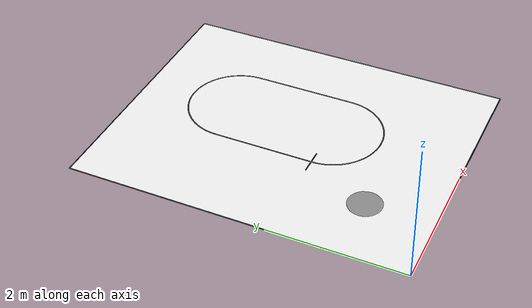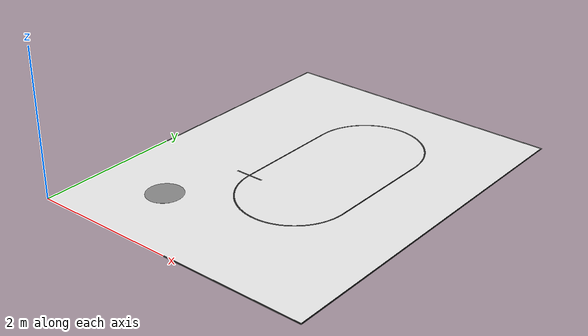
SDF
<?xml version="1.0"?>
<sdf version="1.10">
  <world name="d_task_field">
    <gravity>0 0 -9.8</gravity>
    <physics name="step" type="ignored">
      <max_step_size>0.001</max_step_size>
      <real_time_factor>1.0</real_time_factor>
    </physics>
    <scene><ambient>0.8 0.8 0.8 1</ambient><background>0.7 0.8 0.9 1</background></scene>
    <light name="sun" type="directional">
      <pose>2 2 10 0 0 0</pose><direction>-0.2 0.2 -1</direction>
      <diffuse>0.9 0.9 0.9 1</diffuse>
    </light>
    <model name="d_task_field_surface">
      <static>true</static><link name="field_link">
        <collision name="field_collision">
          <pose>2.000 2.500 -0.010 0 0 0</pose>
          <geometry><box><size>4.000 5.000 0.020</size></box></geometry>
        </collision>
      <visual name="field_white">
        <pose>2.000000000 2.500000000 -0.005000 0 0 0.000000000000</pose>
        <geometry><box><size>4.000000000 5.000000000 0.010000</size></box></geometry>
        <material><ambient>0.95 0.95 0.95 1</ambient><diffuse>0.95 0.95 0.95 1</diffuse></material>
        <cast_shadows>false</cast_shadows>
      </visual>
      <visual name="border_bottom">
        <pose>2.000000000 0.000000000 0.001000 0 0 0.000000000000</pose>
        <geometry><box><size>4.000200000 0.020000000 0.001000</size></box></geometry>
        <material><ambient>0.01 0.01 0.01 1</ambient><diffuse>0.01 0.01 0.01 1</diffuse></material>
        <cast_shadows>false</cast_shadows>
      </visual>
      <visual name="border_top">
        <pose>2.000000000 5.000000000 0.001000 0 0 0.000000000000</pose>
        <geometry><box><size>4.000200000 0.020000000 0.001000</size></box></geometry>
        <material><ambient>0.01 0.01 0.01 1</ambient><diffuse>0.01 0.01 0.01 1</diffuse></material>
        <cast_shadows>false</cast_shadows>
      </visual>
      <visual name="border_left">
        <pose>0.000000000 2.500000000 0.001000 0 0 1.570796326795</pose>
        <geometry><box><size>5.000200000 0.020000000 0.001000</size></box></geometry>
        <material><ambient>0.01 0.01 0.01 1</ambient><diffuse>0.01 0.01 0.01 1</diffuse></material>
        <cast_shadows>false</cast_shadows>
      </visual>
      <visual name="border_right">
        <pose>4.000000000 2.500000000 0.001000 0 0 1.570796326795</pose>
        <geometry><box><size>5.000200000 0.020000000 0.001000</size></box></geometry>
        <material><ambient>0.01 0.01 0.01 1</ambient><diffuse>0.01 0.01 0.01 1</diffuse></material>
        <cast_shadows>false</cast_shadows>
      </visual>
      <visual name="track_left">
        <pose>1.500000000 2.750000000 0.001000 0 0 1.570796326795</pose>
        <geometry><box><size>1.500200000 0.020000000 0.001000</size></box></geometry>
        <material><ambient>0.01 0.01 0.01 1</ambient><diffuse>0.01 0.01 0.01 1</diffuse></material>
        <cast_shadows>false</cast_shadows>
      </visual>
      <visual name="track_right">
        <pose>3.000000000 2.750000000 0.001000 0 0 1.570796326795</pose>
        <geometry><box><size>1.500200000 0.020000000 0.001000</size></box></geometry>
        <material><ambient>0.01 0.01 0.01 1</ambient><diffuse>0.01 0.01 0.01 1</diffuse></material>
        <cast_shadows>false</cast_shadows>
      </visual>
      <visual name="start_line_a">
        <pose>1.500000000 2.000000000 0.001000 0 0 0.000000000000</pose>
        <geometry><box><size>0.400200000 0.020000000 0.001000</size></box></geometry>
        <material><ambient>0.01 0.01 0.01 1</ambient><diffuse>0.01 0.01 0.01 1</diffuse></material>
        <cast_shadows>false</cast_shadows>
      </visual>
      <visual name="track_upper_000">
        <pose>1.500356917 3.516357270 0.001000 0 0 1.548979711145</pose>
        <geometry><box><size>0.032922328 0.020000000 0.001000</size></box></geometry>
        <material><ambient>0.01 0.01 0.01 1</ambient><diffuse>0.01 0.01 0.01 1</diffuse></material>
        <cast_shadows>false</cast_shadows>
      </visual>
      <visual name="track_upper_001">
        <pose>1.501783905 3.549040674 0.001000 0 0 1.505346479845</pose>
        <geometry><box><size>0.032922328 0.020000000 0.001000</size></box></geometry>
        <material><ambient>0.01 0.01 0.01 1</ambient><diffuse>0.01 0.01 0.01 1</diffuse></material>
        <cast_shadows>false</cast_shadows>
      </visual>
      <visual name="track_upper_002">
        <pose>1.504635165 3.581630726 0.001000 0 0 1.461713248545</pose>
        <geometry><box><size>0.032922328 0.020000000 0.001000</size></box></geometry>
        <material><ambient>0.01 0.01 0.01 1</ambient><diffuse>0.01 0.01 0.01 1</diffuse></material>
        <cast_shadows>false</cast_shadows>
      </visual>
      <visual name="track_upper_003">
        <pose>1.508905270 3.614065389 0.001000 0 0 1.418080017245</pose>
        <geometry><box><size>0.032922328 0.020000000 0.001000</size></box></geometry>
        <material><ambient>0.01 0.01 0.01 1</ambient><diffuse>0.01 0.01 0.01 1</diffuse></material>
        <cast_shadows>false</cast_shadows>
      </visual>
      <visual name="track_upper_004">
        <pose>1.514586090 3.646282922 0.001000 0 0 1.374446785946</pose>
        <geometry><box><size>0.032922328 0.020000000 0.001000</size></box></geometry>
        <material><ambient>0.01 0.01 0.01 1</ambient><diffuse>0.01 0.01 0.01 1</diffuse></material>
        <cast_shadows>false</cast_shadows>
      </visual>
      <visual name="track_upper_005">
        <pose>1.521666812 3.678221997 0.001000 0 0 1.330813554646</pose>
        <geometry><box><size>0.032922328 0.020000000 0.001000</size></box></geometry>
        <material><ambient>0.01 0.01 0.01 1</ambient><diffuse>0.01 0.01 0.01 1</diffuse></material>
        <cast_shadows>false</cast_shadows>
      </visual>
      <visual name="track_upper_006">
        <pose>1.530133959 3.709821817 0.001000 0 0 1.287180323346</pose>
        <geometry><box><size>0.032922328 0.020000000 0.001000</size></box></geometry>
        <material><ambient>0.01 0.01 0.01 1</ambient><diffuse>0.01 0.01 0.01 1</diffuse></material>
        <cast_shadows>false</cast_shadows>
      </visual>
      <visual name="track_upper_007">
        <pose>1.539971411 3.741022229 0.001000 0 0 1.243547092046</pose>
        <geometry><box><size>0.032922328 0.020000000 0.001000</size></box></geometry>
        <material><ambient>0.01 0.01 0.01 1</ambient><diffuse>0.01 0.01 0.01 1</diffuse></material>
        <cast_shadows>false</cast_shadows>
      </visual>
      <visual name="track_upper_008">
        <pose>1.551160443 3.771763841 0.001000 0 0 1.199913860746</pose>
        <geometry><box><size>0.032922328 0.020000000 0.001000</size></box></geometry>
        <material><ambient>0.01 0.01 0.01 1</ambient><diffuse>0.01 0.01 0.01 1</diffuse></material>
        <cast_shadows>false</cast_shadows>
      </visual>
      <visual name="track_upper_009">
        <pose>1.563679755 3.801988135 0.001000 0 0 1.156280629446</pose>
        <geometry><box><size>0.032922328 0.020000000 0.001000</size></box></geometry>
        <material><ambient>0.01 0.01 0.01 1</ambient><diffuse>0.01 0.01 0.01 1</diffuse></material>
        <cast_shadows>false</cast_shadows>
      </visual>
      <visual name="track_upper_010">
        <pose>1.577505517 3.831637578 0.001000 0 0 1.112647398146</pose>
        <geometry><box><size>0.032922328 0.020000000 0.001000</size></box></geometry>
        <material><ambient>0.01 0.01 0.01 1</ambient><diffuse>0.01 0.01 0.01 1</diffuse></material>
        <cast_shadows>false</cast_shadows>
      </visual>
      <visual name="track_upper_011">
        <pose>1.592611411 3.860655730 0.001000 0 0 1.069014166847</pose>
        <geometry><box><size>0.032922328 0.020000000 0.001000</size></box></geometry>
        <material><ambient>0.01 0.01 0.01 1</ambient><diffuse>0.01 0.01 0.01 1</diffuse></material>
        <cast_shadows>false</cast_shadows>
      </visual>
      <visual name="track_upper_012">
        <pose>1.608968681 3.888987353 0.001000 0 0 1.025380935547</pose>
        <geometry><box><size>0.032922328 0.020000000 0.001000</size></box></geometry>
        <material><ambient>0.01 0.01 0.01 1</ambient><diffuse>0.01 0.01 0.01 1</diffuse></material>
        <cast_shadows>false</cast_shadows>
      </visual>
      <visual name="track_upper_013">
        <pose>1.626546191 3.916578517 0.001000 0 0 0.981747704247</pose>
        <geometry><box><size>0.032922328 0.020000000 0.001000</size></box></geometry>
        <material><ambient>0.01 0.01 0.01 1</ambient><diffuse>0.01 0.01 0.01 1</diffuse></material>
        <cast_shadows>false</cast_shadows>
      </visual>
      <visual name="track_upper_014">
        <pose>1.645310481 3.943376700 0.001000 0 0 0.938114472947</pose>
        <geometry><box><size>0.032922328 0.020000000 0.001000</size></box></geometry>
        <material><ambient>0.01 0.01 0.01 1</ambient><diffuse>0.01 0.01 0.01 1</diffuse></material>
        <cast_shadows>false</cast_shadows>
      </visual>
      <visual name="track_upper_015">
        <pose>1.665225831 3.969330890 0.001000 0 0 0.894481241647</pose>
        <geometry><box><size>0.032922328 0.020000000 0.001000</size></box></geometry>
        <material><ambient>0.01 0.01 0.01 1</ambient><diffuse>0.01 0.01 0.01 1</diffuse></material>
        <cast_shadows>false</cast_shadows>
      </visual>
      <visual name="track_upper_016">
        <pose>1.686254333 3.994391681 0.001000 0 0 0.850848010347</pose>
        <geometry><box><size>0.032922328 0.020000000 0.001000</size></box></geometry>
        <material><ambient>0.01 0.01 0.01 1</ambient><diffuse>0.01 0.01 0.01 1</diffuse></material>
        <cast_shadows>false</cast_shadows>
      </visual>
      <visual name="track_upper_017">
        <pose>1.708355956 4.018511371 0.001000 0 0 0.807214779047</pose>
        <geometry><box><size>0.032922328 0.020000000 0.001000</size></box></geometry>
        <material><ambient>0.01 0.01 0.01 1</ambient><diffuse>0.01 0.01 0.01 1</diffuse></material>
        <cast_shadows>false</cast_shadows>
      </visual>
      <visual name="track_upper_018">
        <pose>1.731488629 4.041644044 0.001000 0 0 0.763581547748</pose>
        <geometry><box><size>0.032922328 0.020000000 0.001000</size></box></geometry>
        <material><ambient>0.01 0.01 0.01 1</ambient><diffuse>0.01 0.01 0.01 1</diffuse></material>
        <cast_shadows>false</cast_shadows>
      </visual>
      <visual name="track_upper_019">
        <pose>1.755608319 4.063745667 0.001000 0 0 0.719948316448</pose>
        <geometry><box><size>0.032922328 0.020000000 0.001000</size></box></geometry>
        <material><ambient>0.01 0.01 0.01 1</ambient><diffuse>0.01 0.01 0.01 1</diffuse></material>
        <cast_shadows>false</cast_shadows>
      </visual>
      <visual name="track_upper_020">
        <pose>1.780669110 4.084774169 0.001000 0 0 0.676315085148</pose>
        <geometry><box><size>0.032922328 0.020000000 0.001000</size></box></geometry>
        <material><ambient>0.01 0.01 0.01 1</ambient><diffuse>0.01 0.01 0.01 1</diffuse></material>
        <cast_shadows>false</cast_shadows>
      </visual>
      <visual name="track_upper_021">
        <pose>1.806623300 4.104689519 0.001000 0 0 0.632681853848</pose>
        <geometry><box><size>0.032922328 0.020000000 0.001000</size></box></geometry>
        <material><ambient>0.01 0.01 0.01 1</ambient><diffuse>0.01 0.01 0.01 1</diffuse></material>
        <cast_shadows>false</cast_shadows>
      </visual>
      <visual name="track_upper_022">
        <pose>1.833421483 4.123453809 0.001000 0 0 0.589048622548</pose>
        <geometry><box><size>0.032922328 0.020000000 0.001000</size></box></geometry>
        <material><ambient>0.01 0.01 0.01 1</ambient><diffuse>0.01 0.01 0.01 1</diffuse></material>
        <cast_shadows>false</cast_shadows>
      </visual>
      <visual name="track_upper_023">
        <pose>1.861012647 4.141031319 0.001000 0 0 0.545415391248</pose>
        <geometry><box><size>0.032922328 0.020000000 0.001000</size></box></geometry>
        <material><ambient>0.01 0.01 0.01 1</ambient><diffuse>0.01 0.01 0.01 1</diffuse></material>
        <cast_shadows>false</cast_shadows>
      </visual>
      <visual name="track_upper_024">
        <pose>1.889344270 4.157388589 0.001000 0 0 0.501782159948</pose>
        <geometry><box><size>0.032922328 0.020000000 0.001000</size></box></geometry>
        <material><ambient>0.01 0.01 0.01 1</ambient><diffuse>0.01 0.01 0.01 1</diffuse></material>
        <cast_shadows>false</cast_shadows>
      </visual>
      <visual name="track_upper_025">
        <pose>1.918362422 4.172494483 0.001000 0 0 0.458148928649</pose>
        <geometry><box><size>0.032922328 0.020000000 0.001000</size></box></geometry>
        <material><ambient>0.01 0.01 0.01 1</ambient><diffuse>0.01 0.01 0.01 1</diffuse></material>
        <cast_shadows>false</cast_shadows>
      </visual>
      <visual name="track_upper_026">
        <pose>1.948011865 4.186320245 0.001000 0 0 0.414515697349</pose>
        <geometry><box><size>0.032922328 0.020000000 0.001000</size></box></geometry>
        <material><ambient>0.01 0.01 0.01 1</ambient><diffuse>0.01 0.01 0.01 1</diffuse></material>
        <cast_shadows>false</cast_shadows>
      </visual>
      <visual name="track_upper_027">
        <pose>1.978236159 4.198839557 0.001000 0 0 0.370882466049</pose>
        <geometry><box><size>0.032922328 0.020000000 0.001000</size></box></geometry>
        <material><ambient>0.01 0.01 0.01 1</ambient><diffuse>0.01 0.01 0.01 1</diffuse></material>
        <cast_shadows>false</cast_shadows>
      </visual>
      <visual name="track_upper_028">
        <pose>2.008977771 4.210028589 0.001000 0 0 0.327249234749</pose>
        <geometry><box><size>0.032922328 0.020000000 0.001000</size></box></geometry>
        <material><ambient>0.01 0.01 0.01 1</ambient><diffuse>0.01 0.01 0.01 1</diffuse></material>
        <cast_shadows>false</cast_shadows>
      </visual>
      <visual name="track_upper_029">
        <pose>2.040178183 4.219866041 0.001000 0 0 0.283616003449</pose>
        <geometry><box><size>0.032922328 0.020000000 0.001000</size></box></geometry>
        <material><ambient>0.01 0.01 0.01 1</ambient><diffuse>0.01 0.01 0.01 1</diffuse></material>
        <cast_shadows>false</cast_shadows>
      </visual>
      <visual name="track_upper_030">
        <pose>2.071778003 4.228333188 0.001000 0 0 0.239982772149</pose>
        <geometry><box><size>0.032922328 0.020000000 0.001000</size></box></geometry>
        <material><ambient>0.01 0.01 0.01 1</ambient><diffuse>0.01 0.01 0.01 1</diffuse></material>
        <cast_shadows>false</cast_shadows>
      </visual>
      <visual name="track_upper_031">
        <pose>2.103717078 4.235413910 0.001000 0 0 0.196349540849</pose>
        <geometry><box><size>0.032922328 0.020000000 0.001000</size></box></geometry>
        <material><ambient>0.01 0.01 0.01 1</ambient><diffuse>0.01 0.01 0.01 1</diffuse></material>
        <cast_shadows>false</cast_shadows>
      </visual>
      <visual name="track_upper_032">
        <pose>2.135934611 4.241094730 0.001000 0 0 0.152716309550</pose>
        <geometry><box><size>0.032922328 0.020000000 0.001000</size></box></geometry>
        <material><ambient>0.01 0.01 0.01 1</ambient><diffuse>0.01 0.01 0.01 1</diffuse></material>
        <cast_shadows>false</cast_shadows>
      </visual>
      <visual name="track_upper_033">
        <pose>2.168369274 4.245364835 0.001000 0 0 0.109083078250</pose>
        <geometry><box><size>0.032922328 0.020000000 0.001000</size></box></geometry>
        <material><ambient>0.01 0.01 0.01 1</ambient><diffuse>0.01 0.01 0.01 1</diffuse></material>
        <cast_shadows>false</cast_shadows>
      </visual>
      <visual name="track_upper_034">
        <pose>2.200959326 4.248216095 0.001000 0 0 0.065449846950</pose>
        <geometry><box><size>0.032922328 0.020000000 0.001000</size></box></geometry>
        <material><ambient>0.01 0.01 0.01 1</ambient><diffuse>0.01 0.01 0.01 1</diffuse></material>
        <cast_shadows>false</cast_shadows>
      </visual>
      <visual name="track_upper_035">
        <pose>2.233642730 4.249643083 0.001000 0 0 0.021816615650</pose>
        <geometry><box><size>0.032922328 0.020000000 0.001000</size></box></geometry>
        <material><ambient>0.01 0.01 0.01 1</ambient><diffuse>0.01 0.01 0.01 1</diffuse></material>
        <cast_shadows>false</cast_shadows>
      </visual>
      <visual name="track_upper_036">
        <pose>2.266357270 4.249643083 0.001000 0 0 -0.021816615650</pose>
        <geometry><box><size>0.032922328 0.020000000 0.001000</size></box></geometry>
        <material><ambient>0.01 0.01 0.01 1</ambient><diffuse>0.01 0.01 0.01 1</diffuse></material>
        <cast_shadows>false</cast_shadows>
      </visual>
      <visual name="track_upper_037">
        <pose>2.299040674 4.248216095 0.001000 0 0 -0.065449846950</pose>
        <geometry><box><size>0.032922328 0.020000000 0.001000</size></box></geometry>
        <material><ambient>0.01 0.01 0.01 1</ambient><diffuse>0.01 0.01 0.01 1</diffuse></material>
        <cast_shadows>false</cast_shadows>
      </visual>
      <visual name="track_upper_038">
        <pose>2.331630726 4.245364835 0.001000 0 0 -0.109083078250</pose>
        <geometry><box><size>0.032922328 0.020000000 0.001000</size></box></geometry>
        <material><ambient>0.01 0.01 0.01 1</ambient><diffuse>0.01 0.01 0.01 1</diffuse></material>
        <cast_shadows>false</cast_shadows>
      </visual>
      <visual name="track_upper_039">
        <pose>2.364065389 4.241094730 0.001000 0 0 -0.152716309549</pose>
        <geometry><box><size>0.032922328 0.020000000 0.001000</size></box></geometry>
        <material><ambient>0.01 0.01 0.01 1</ambient><diffuse>0.01 0.01 0.01 1</diffuse></material>
        <cast_shadows>false</cast_shadows>
      </visual>
      <visual name="track_upper_040">
        <pose>2.396282922 4.235413910 0.001000 0 0 -0.196349540849</pose>
        <geometry><box><size>0.032922328 0.020000000 0.001000</size></box></geometry>
        <material><ambient>0.01 0.01 0.01 1</ambient><diffuse>0.01 0.01 0.01 1</diffuse></material>
        <cast_shadows>false</cast_shadows>
      </visual>
      <visual name="track_upper_041">
        <pose>2.428221997 4.228333188 0.001000 0 0 -0.239982772149</pose>
        <geometry><box><size>0.032922328 0.020000000 0.001000</size></box></geometry>
        <material><ambient>0.01 0.01 0.01 1</ambient><diffuse>0.01 0.01 0.01 1</diffuse></material>
        <cast_shadows>false</cast_shadows>
      </visual>
      <visual name="track_upper_042">
        <pose>2.459821817 4.219866041 0.001000 0 0 -0.283616003449</pose>
        <geometry><box><size>0.032922328 0.020000000 0.001000</size></box></geometry>
        <material><ambient>0.01 0.01 0.01 1</ambient><diffuse>0.01 0.01 0.01 1</diffuse></material>
        <cast_shadows>false</cast_shadows>
      </visual>
      <visual name="track_upper_043">
        <pose>2.491022229 4.210028589 0.001000 0 0 -0.327249234749</pose>
        <geometry><box><size>0.032922328 0.020000000 0.001000</size></box></geometry>
        <material><ambient>0.01 0.01 0.01 1</ambient><diffuse>0.01 0.01 0.01 1</diffuse></material>
        <cast_shadows>false</cast_shadows>
      </visual>
      <visual name="track_upper_044">
        <pose>2.521763841 4.198839557 0.001000 0 0 -0.370882466049</pose>
        <geometry><box><size>0.032922328 0.020000000 0.001000</size></box></geometry>
        <material><ambient>0.01 0.01 0.01 1</ambient><diffuse>0.01 0.01 0.01 1</diffuse></material>
        <cast_shadows>false</cast_shadows>
      </visual>
      <visual name="track_upper_045">
        <pose>2.551988135 4.186320245 0.001000 0 0 -0.414515697349</pose>
        <geometry><box><size>0.032922328 0.020000000 0.001000</size></box></geometry>
        <material><ambient>0.01 0.01 0.01 1</ambient><diffuse>0.01 0.01 0.01 1</diffuse></material>
        <cast_shadows>false</cast_shadows>
      </visual>
      <visual name="track_upper_046">
        <pose>2.581637578 4.172494483 0.001000 0 0 -0.458148928649</pose>
        <geometry><box><size>0.032922328 0.020000000 0.001000</size></box></geometry>
        <material><ambient>0.01 0.01 0.01 1</ambient><diffuse>0.01 0.01 0.01 1</diffuse></material>
        <cast_shadows>false</cast_shadows>
      </visual>
      <visual name="track_upper_047">
        <pose>2.610655730 4.157388589 0.001000 0 0 -0.501782159948</pose>
        <geometry><box><size>0.032922328 0.020000000 0.001000</size></box></geometry>
        <material><ambient>0.01 0.01 0.01 1</ambient><diffuse>0.01 0.01 0.01 1</diffuse></material>
        <cast_shadows>false</cast_shadows>
      </visual>
      <visual name="track_upper_048">
        <pose>2.638987353 4.141031319 0.001000 0 0 -0.545415391248</pose>
        <geometry><box><size>0.032922328 0.020000000 0.001000</size></box></geometry>
        <material><ambient>0.01 0.01 0.01 1</ambient><diffuse>0.01 0.01 0.01 1</diffuse></material>
        <cast_shadows>false</cast_shadows>
      </visual>
      <visual name="track_upper_049">
        <pose>2.666578517 4.123453809 0.001000 0 0 -0.589048622548</pose>
        <geometry><box><size>0.032922328 0.020000000 0.001000</size></box></geometry>
        <material><ambient>0.01 0.01 0.01 1</ambient><diffuse>0.01 0.01 0.01 1</diffuse></material>
        <cast_shadows>false</cast_shadows>
      </visual>
      <visual name="track_upper_050">
        <pose>2.693376700 4.104689519 0.001000 0 0 -0.632681853848</pose>
        <geometry><box><size>0.032922328 0.020000000 0.001000</size></box></geometry>
        <material><ambient>0.01 0.01 0.01 1</ambient><diffuse>0.01 0.01 0.01 1</diffuse></material>
        <cast_shadows>false</cast_shadows>
      </visual>
      <visual name="track_upper_051">
        <pose>2.719330890 4.084774169 0.001000 0 0 -0.676315085148</pose>
        <geometry><box><size>0.032922328 0.020000000 0.001000</size></box></geometry>
        <material><ambient>0.01 0.01 0.01 1</ambient><diffuse>0.01 0.01 0.01 1</diffuse></material>
        <cast_shadows>false</cast_shadows>
      </visual>
      <visual name="track_upper_052">
        <pose>2.744391681 4.063745667 0.001000 0 0 -0.719948316448</pose>
        <geometry><box><size>0.032922328 0.020000000 0.001000</size></box></geometry>
        <material><ambient>0.01 0.01 0.01 1</ambient><diffuse>0.01 0.01 0.01 1</diffuse></material>
        <cast_shadows>false</cast_shadows>
      </visual>
      <visual name="track_upper_053">
        <pose>2.768511371 4.041644044 0.001000 0 0 -0.763581547748</pose>
        <geometry><box><size>0.032922328 0.020000000 0.001000</size></box></geometry>
        <material><ambient>0.01 0.01 0.01 1</ambient><diffuse>0.01 0.01 0.01 1</diffuse></material>
        <cast_shadows>false</cast_shadows>
      </visual>
      <visual name="track_upper_054">
        <pose>2.791644044 4.018511371 0.001000 0 0 -0.807214779047</pose>
        <geometry><box><size>0.032922328 0.020000000 0.001000</size></box></geometry>
        <material><ambient>0.01 0.01 0.01 1</ambient><diffuse>0.01 0.01 0.01 1</diffuse></material>
        <cast_shadows>false</cast_shadows>
      </visual>
      <visual name="track_upper_055">
        <pose>2.813745667 3.994391681 0.001000 0 0 -0.850848010347</pose>
        <geometry><box><size>0.032922328 0.020000000 0.001000</size></box></geometry>
        <material><ambient>0.01 0.01 0.01 1</ambient><diffuse>0.01 0.01 0.01 1</diffuse></material>
        <cast_shadows>false</cast_shadows>
      </visual>
      <visual name="track_upper_056">
        <pose>2.834774169 3.969330890 0.001000 0 0 -0.894481241647</pose>
        <geometry><box><size>0.032922328 0.020000000 0.001000</size></box></geometry>
        <material><ambient>0.01 0.01 0.01 1</ambient><diffuse>0.01 0.01 0.01 1</diffuse></material>
        <cast_shadows>false</cast_shadows>
      </visual>
      <visual name="track_upper_057">
        <pose>2.854689519 3.943376700 0.001000 0 0 -0.938114472947</pose>
        <geometry><box><size>0.032922328 0.020000000 0.001000</size></box></geometry>
        <material><ambient>0.01 0.01 0.01 1</ambient><diffuse>0.01 0.01 0.01 1</diffuse></material>
        <cast_shadows>false</cast_shadows>
      </visual>
      <visual name="track_upper_058">
        <pose>2.873453809 3.916578517 0.001000 0 0 -0.981747704247</pose>
        <geometry><box><size>0.032922328 0.020000000 0.001000</size></box></geometry>
        <material><ambient>0.01 0.01 0.01 1</ambient><diffuse>0.01 0.01 0.01 1</diffuse></material>
        <cast_shadows>false</cast_shadows>
      </visual>
      <visual name="track_upper_059">
        <pose>2.891031319 3.888987353 0.001000 0 0 -1.025380935547</pose>
        <geometry><box><size>0.032922328 0.020000000 0.001000</size></box></geometry>
        <material><ambient>0.01 0.01 0.01 1</ambient><diffuse>0.01 0.01 0.01 1</diffuse></material>
        <cast_shadows>false</cast_shadows>
      </visual>
      <visual name="track_upper_060">
        <pose>2.907388589 3.860655730 0.001000 0 0 -1.069014166847</pose>
        <geometry><box><size>0.032922328 0.020000000 0.001000</size></box></geometry>
        <material><ambient>0.01 0.01 0.01 1</ambient><diffuse>0.01 0.01 0.01 1</diffuse></material>
        <cast_shadows>false</cast_shadows>
      </visual>
      <visual name="track_upper_061">
        <pose>2.922494483 3.831637578 0.001000 0 0 -1.112647398146</pose>
        <geometry><box><size>0.032922328 0.020000000 0.001000</size></box></geometry>
        <material><ambient>0.01 0.01 0.01 1</ambient><diffuse>0.01 0.01 0.01 1</diffuse></material>
        <cast_shadows>false</cast_shadows>
      </visual>
      <visual name="track_upper_062">
        <pose>2.936320245 3.801988135 0.001000 0 0 -1.156280629446</pose>
        <geometry><box><size>0.032922328 0.020000000 0.001000</size></box></geometry>
        <material><ambient>0.01 0.01 0.01 1</ambient><diffuse>0.01 0.01 0.01 1</diffuse></material>
        <cast_shadows>false</cast_shadows>
      </visual>
      <visual name="track_upper_063">
        <pose>2.948839557 3.771763841 0.001000 0 0 -1.199913860746</pose>
        <geometry><box><size>0.032922328 0.020000000 0.001000</size></box></geometry>
        <material><ambient>0.01 0.01 0.01 1</ambient><diffuse>0.01 0.01 0.01 1</diffuse></material>
        <cast_shadows>false</cast_shadows>
      </visual>
      <visual name="track_upper_064">
        <pose>2.960028589 3.741022229 0.001000 0 0 -1.243547092046</pose>
        <geometry><box><size>0.032922328 0.020000000 0.001000</size></box></geometry>
        <material><ambient>0.01 0.01 0.01 1</ambient><diffuse>0.01 0.01 0.01 1</diffuse></material>
        <cast_shadows>false</cast_shadows>
      </visual>
      <visual name="track_upper_065">
        <pose>2.969866041 3.709821817 0.001000 0 0 -1.287180323346</pose>
        <geometry><box><size>0.032922328 0.020000000 0.001000</size></box></geometry>
        <material><ambient>0.01 0.01 0.01 1</ambient><diffuse>0.01 0.01 0.01 1</diffuse></material>
        <cast_shadows>false</cast_shadows>
      </visual>
      <visual name="track_upper_066">
        <pose>2.978333188 3.678221997 0.001000 0 0 -1.330813554646</pose>
        <geometry><box><size>0.032922328 0.020000000 0.001000</size></box></geometry>
        <material><ambient>0.01 0.01 0.01 1</ambient><diffuse>0.01 0.01 0.01 1</diffuse></material>
        <cast_shadows>false</cast_shadows>
      </visual>
      <visual name="track_upper_067">
        <pose>2.985413910 3.646282922 0.001000 0 0 -1.374446785946</pose>
        <geometry><box><size>0.032922328 0.020000000 0.001000</size></box></geometry>
        <material><ambient>0.01 0.01 0.01 1</ambient><diffuse>0.01 0.01 0.01 1</diffuse></material>
        <cast_shadows>false</cast_shadows>
      </visual>
      <visual name="track_upper_068">
        <pose>2.991094730 3.614065389 0.001000 0 0 -1.418080017245</pose>
        <geometry><box><size>0.032922328 0.020000000 0.001000</size></box></geometry>
        <material><ambient>0.01 0.01 0.01 1</ambient><diffuse>0.01 0.01 0.01 1</diffuse></material>
        <cast_shadows>false</cast_shadows>
      </visual>
      <visual name="track_upper_069">
        <pose>2.995364835 3.581630726 0.001000 0 0 -1.461713248545</pose>
        <geometry><box><size>0.032922328 0.020000000 0.001000</size></box></geometry>
        <material><ambient>0.01 0.01 0.01 1</ambient><diffuse>0.01 0.01 0.01 1</diffuse></material>
        <cast_shadows>false</cast_shadows>
      </visual>
      <visual name="track_upper_070">
        <pose>2.998216095 3.549040674 0.001000 0 0 -1.505346479845</pose>
        <geometry><box><size>0.032922328 0.020000000 0.001000</size></box></geometry>
        <material><ambient>0.01 0.01 0.01 1</ambient><diffuse>0.01 0.01 0.01 1</diffuse></material>
        <cast_shadows>false</cast_shadows>
      </visual>
      <visual name="track_upper_071">
        <pose>2.999643083 3.516357270 0.001000 0 0 -1.548979711145</pose>
        <geometry><box><size>0.032922328 0.020000000 0.001000</size></box></geometry>
        <material><ambient>0.01 0.01 0.01 1</ambient><diffuse>0.01 0.01 0.01 1</diffuse></material>
        <cast_shadows>false</cast_shadows>
      </visual>
      <visual name="track_lower_000">
        <pose>2.999643083 1.983642730 0.001000 0 0 -1.592612942445</pose>
        <geometry><box><size>0.032922328 0.020000000 0.001000</size></box></geometry>
        <material><ambient>0.01 0.01 0.01 1</ambient><diffuse>0.01 0.01 0.01 1</diffuse></material>
        <cast_shadows>false</cast_shadows>
      </visual>
      <visual name="track_lower_001">
        <pose>2.998216095 1.950959326 0.001000 0 0 -1.636246173745</pose>
        <geometry><box><size>0.032922328 0.020000000 0.001000</size></box></geometry>
        <material><ambient>0.01 0.01 0.01 1</ambient><diffuse>0.01 0.01 0.01 1</diffuse></material>
        <cast_shadows>false</cast_shadows>
      </visual>
      <visual name="track_lower_002">
        <pose>2.995364835 1.918369274 0.001000 0 0 -1.679879405045</pose>
        <geometry><box><size>0.032922328 0.020000000 0.001000</size></box></geometry>
        <material><ambient>0.01 0.01 0.01 1</ambient><diffuse>0.01 0.01 0.01 1</diffuse></material>
        <cast_shadows>false</cast_shadows>
      </visual>
      <visual name="track_lower_003">
        <pose>2.991094730 1.885934611 0.001000 0 0 -1.723512636344</pose>
        <geometry><box><size>0.032922328 0.020000000 0.001000</size></box></geometry>
        <material><ambient>0.01 0.01 0.01 1</ambient><diffuse>0.01 0.01 0.01 1</diffuse></material>
        <cast_shadows>false</cast_shadows>
      </visual>
      <visual name="track_lower_004">
        <pose>2.985413910 1.853717078 0.001000 0 0 -1.767145867644</pose>
        <geometry><box><size>0.032922328 0.020000000 0.001000</size></box></geometry>
        <material><ambient>0.01 0.01 0.01 1</ambient><diffuse>0.01 0.01 0.01 1</diffuse></material>
        <cast_shadows>false</cast_shadows>
      </visual>
      <visual name="track_lower_005">
        <pose>2.978333188 1.821778003 0.001000 0 0 -1.810779098944</pose>
        <geometry><box><size>0.032922328 0.020000000 0.001000</size></box></geometry>
        <material><ambient>0.01 0.01 0.01 1</ambient><diffuse>0.01 0.01 0.01 1</diffuse></material>
        <cast_shadows>false</cast_shadows>
      </visual>
      <visual name="track_lower_006">
        <pose>2.969866041 1.790178183 0.001000 0 0 -1.854412330244</pose>
        <geometry><box><size>0.032922328 0.020000000 0.001000</size></box></geometry>
        <material><ambient>0.01 0.01 0.01 1</ambient><diffuse>0.01 0.01 0.01 1</diffuse></material>
        <cast_shadows>false</cast_shadows>
      </visual>
      <visual name="track_lower_007">
        <pose>2.960028589 1.758977771 0.001000 0 0 -1.898045561544</pose>
        <geometry><box><size>0.032922328 0.020000000 0.001000</size></box></geometry>
        <material><ambient>0.01 0.01 0.01 1</ambient><diffuse>0.01 0.01 0.01 1</diffuse></material>
        <cast_shadows>false</cast_shadows>
      </visual>
      <visual name="track_lower_008">
        <pose>2.948839557 1.728236159 0.001000 0 0 -1.941678792844</pose>
        <geometry><box><size>0.032922328 0.020000000 0.001000</size></box></geometry>
        <material><ambient>0.01 0.01 0.01 1</ambient><diffuse>0.01 0.01 0.01 1</diffuse></material>
        <cast_shadows>false</cast_shadows>
      </visual>
      <visual name="track_lower_009">
        <pose>2.936320245 1.698011865 0.001000 0 0 -1.985312024144</pose>
        <geometry><box><size>0.032922328 0.020000000 0.001000</size></box></geometry>
        <material><ambient>0.01 0.01 0.01 1</ambient><diffuse>0.01 0.01 0.01 1</diffuse></material>
        <cast_shadows>false</cast_shadows>
      </visual>
      <visual name="track_lower_010">
        <pose>2.922494483 1.668362422 0.001000 0 0 -2.028945255443</pose>
        <geometry><box><size>0.032922328 0.020000000 0.001000</size></box></geometry>
        <material><ambient>0.01 0.01 0.01 1</ambient><diffuse>0.01 0.01 0.01 1</diffuse></material>
        <cast_shadows>false</cast_shadows>
      </visual>
      <visual name="track_lower_011">
        <pose>2.907388589 1.639344270 0.001000 0 0 -2.072578486743</pose>
        <geometry><box><size>0.032922328 0.020000000 0.001000</size></box></geometry>
        <material><ambient>0.01 0.01 0.01 1</ambient><diffuse>0.01 0.01 0.01 1</diffuse></material>
        <cast_shadows>false</cast_shadows>
      </visual>
      <visual name="track_lower_012">
        <pose>2.891031319 1.611012647 0.001000 0 0 -2.116211718043</pose>
        <geometry><box><size>0.032922328 0.020000000 0.001000</size></box></geometry>
        <material><ambient>0.01 0.01 0.01 1</ambient><diffuse>0.01 0.01 0.01 1</diffuse></material>
        <cast_shadows>false</cast_shadows>
      </visual>
      <visual name="track_lower_013">
        <pose>2.873453809 1.583421483 0.001000 0 0 -2.159844949343</pose>
        <geometry><box><size>0.032922328 0.020000000 0.001000</size></box></geometry>
        <material><ambient>0.01 0.01 0.01 1</ambient><diffuse>0.01 0.01 0.01 1</diffuse></material>
        <cast_shadows>false</cast_shadows>
      </visual>
      <visual name="track_lower_014">
        <pose>2.854689519 1.556623300 0.001000 0 0 -2.203478180643</pose>
        <geometry><box><size>0.032922328 0.020000000 0.001000</size></box></geometry>
        <material><ambient>0.01 0.01 0.01 1</ambient><diffuse>0.01 0.01 0.01 1</diffuse></material>
        <cast_shadows>false</cast_shadows>
      </visual>
      <visual name="track_lower_015">
        <pose>2.834774169 1.530669110 0.001000 0 0 -2.247111411943</pose>
        <geometry><box><size>0.032922328 0.020000000 0.001000</size></box></geometry>
        <material><ambient>0.01 0.01 0.01 1</ambient><diffuse>0.01 0.01 0.01 1</diffuse></material>
        <cast_shadows>false</cast_shadows>
      </visual>
      <visual name="track_lower_016">
        <pose>2.813745667 1.505608319 0.001000 0 0 -2.290744643243</pose>
        <geometry><box><size>0.032922328 0.020000000 0.001000</size></box></geometry>
        <material><ambient>0.01 0.01 0.01 1</ambient><diffuse>0.01 0.01 0.01 1</diffuse></material>
        <cast_shadows>false</cast_shadows>
      </visual>
      <visual name="track_lower_017">
        <pose>2.791644044 1.481488629 0.001000 0 0 -2.334377874542</pose>
        <geometry><box><size>0.032922328 0.020000000 0.001000</size></box></geometry>
        <material><ambient>0.01 0.01 0.01 1</ambient><diffuse>0.01 0.01 0.01 1</diffuse></material>
        <cast_shadows>false</cast_shadows>
      </visual>
      <visual name="track_lower_018">
        <pose>2.768511371 1.458355956 0.001000 0 0 -2.378011105842</pose>
        <geometry><box><size>0.032922328 0.020000000 0.001000</size></box></geometry>
        <material><ambient>0.01 0.01 0.01 1</ambient><diffuse>0.01 0.01 0.01 1</diffuse></material>
        <cast_shadows>false</cast_shadows>
      </visual>
      <visual name="track_lower_019">
        <pose>2.744391681 1.436254333 0.001000 0 0 -2.421644337142</pose>
        <geometry><box><size>0.032922328 0.020000000 0.001000</size></box></geometry>
        <material><ambient>0.01 0.01 0.01 1</ambient><diffuse>0.01 0.01 0.01 1</diffuse></material>
        <cast_shadows>false</cast_shadows>
      </visual>
      <visual name="track_lower_020">
        <pose>2.719330890 1.415225831 0.001000 0 0 -2.465277568442</pose>
        <geometry><box><size>0.032922328 0.020000000 0.001000</size></box></geometry>
        <material><ambient>0.01 0.01 0.01 1</ambient><diffuse>0.01 0.01 0.01 1</diffuse></material>
        <cast_shadows>false</cast_shadows>
      </visual>
      <visual name="track_lower_021">
        <pose>2.693376700 1.395310481 0.001000 0 0 -2.508910799742</pose>
        <geometry><box><size>0.032922328 0.020000000 0.001000</size></box></geometry>
        <material><ambient>0.01 0.01 0.01 1</ambient><diffuse>0.01 0.01 0.01 1</diffuse></material>
        <cast_shadows>false</cast_shadows>
      </visual>
      <visual name="track_lower_022">
        <pose>2.666578517 1.376546191 0.001000 0 0 -2.552544031042</pose>
        <geometry><box><size>0.032922328 0.020000000 0.001000</size></box></geometry>
        <material><ambient>0.01 0.01 0.01 1</ambient><diffuse>0.01 0.01 0.01 1</diffuse></material>
        <cast_shadows>false</cast_shadows>
      </visual>
      <visual name="track_lower_023">
        <pose>2.638987353 1.358968681 0.001000 0 0 -2.596177262342</pose>
        <geometry><box><size>0.032922328 0.020000000 0.001000</size></box></geometry>
        <material><ambient>0.01 0.01 0.01 1</ambient><diffuse>0.01 0.01 0.01 1</diffuse></material>
        <cast_shadows>false</cast_shadows>
      </visual>
      <visual name="track_lower_024">
        <pose>2.610655730 1.342611411 0.001000 0 0 -2.639810493641</pose>
        <geometry><box><size>0.032922328 0.020000000 0.001000</size></box></geometry>
        <material><ambient>0.01 0.01 0.01 1</ambient><diffuse>0.01 0.01 0.01 1</diffuse></material>
        <cast_shadows>false</cast_shadows>
      </visual>
      <visual name="track_lower_025">
        <pose>2.581637578 1.327505517 0.001000 0 0 -2.683443724941</pose>
        <geometry><box><size>0.032922328 0.020000000 0.001000</size></box></geometry>
        <material><ambient>0.01 0.01 0.01 1</ambient><diffuse>0.01 0.01 0.01 1</diffuse></material>
        <cast_shadows>false</cast_shadows>
      </visual>
      <visual name="track_lower_026">
        <pose>2.551988135 1.313679755 0.001000 0 0 -2.727076956241</pose>
        <geometry><box><size>0.032922328 0.020000000 0.001000</size></box></geometry>
        <material><ambient>0.01 0.01 0.01 1</ambient><diffuse>0.01 0.01 0.01 1</diffuse></material>
        <cast_shadows>false</cast_shadows>
      </visual>
      <visual name="track_lower_027">
        <pose>2.521763841 1.301160443 0.001000 0 0 -2.770710187541</pose>
        <geometry><box><size>0.032922328 0.020000000 0.001000</size></box></geometry>
        <material><ambient>0.01 0.01 0.01 1</ambient><diffuse>0.01 0.01 0.01 1</diffuse></material>
        <cast_shadows>false</cast_shadows>
      </visual>
      <visual name="track_lower_028">
        <pose>2.491022229 1.289971411 0.001000 0 0 -2.814343418841</pose>
        <geometry><box><size>0.032922328 0.020000000 0.001000</size></box></geometry>
        <material><ambient>0.01 0.01 0.01 1</ambient><diffuse>0.01 0.01 0.01 1</diffuse></material>
        <cast_shadows>false</cast_shadows>
      </visual>
      <visual name="track_lower_029">
        <pose>2.459821817 1.280133959 0.001000 0 0 -2.857976650141</pose>
        <geometry><box><size>0.032922328 0.020000000 0.001000</size></box></geometry>
        <material><ambient>0.01 0.01 0.01 1</ambient><diffuse>0.01 0.01 0.01 1</diffuse></material>
        <cast_shadows>false</cast_shadows>
      </visual>
      <visual name="track_lower_030">
        <pose>2.428221997 1.271666812 0.001000 0 0 -2.901609881441</pose>
        <geometry><box><size>0.032922328 0.020000000 0.001000</size></box></geometry>
        <material><ambient>0.01 0.01 0.01 1</ambient><diffuse>0.01 0.01 0.01 1</diffuse></material>
        <cast_shadows>false</cast_shadows>
      </visual>
      <visual name="track_lower_031">
        <pose>2.396282922 1.264586090 0.001000 0 0 -2.945243112740</pose>
        <geometry><box><size>0.032922328 0.020000000 0.001000</size></box></geometry>
        <material><ambient>0.01 0.01 0.01 1</ambient><diffuse>0.01 0.01 0.01 1</diffuse></material>
        <cast_shadows>false</cast_shadows>
      </visual>
      <visual name="track_lower_032">
        <pose>2.364065389 1.258905270 0.001000 0 0 -2.988876344040</pose>
        <geometry><box><size>0.032922328 0.020000000 0.001000</size></box></geometry>
        <material><ambient>0.01 0.01 0.01 1</ambient><diffuse>0.01 0.01 0.01 1</diffuse></material>
        <cast_shadows>false</cast_shadows>
      </visual>
      <visual name="track_lower_033">
        <pose>2.331630726 1.254635165 0.001000 0 0 -3.032509575340</pose>
        <geometry><box><size>0.032922328 0.020000000 0.001000</size></box></geometry>
        <material><ambient>0.01 0.01 0.01 1</ambient><diffuse>0.01 0.01 0.01 1</diffuse></material>
        <cast_shadows>false</cast_shadows>
      </visual>
      <visual name="track_lower_034">
        <pose>2.299040674 1.251783905 0.001000 0 0 -3.076142806640</pose>
        <geometry><box><size>0.032922328 0.020000000 0.001000</size></box></geometry>
        <material><ambient>0.01 0.01 0.01 1</ambient><diffuse>0.01 0.01 0.01 1</diffuse></material>
        <cast_shadows>false</cast_shadows>
      </visual>
      <visual name="track_lower_035">
        <pose>2.266357270 1.250356917 0.001000 0 0 -3.119776037940</pose>
        <geometry><box><size>0.032922328 0.020000000 0.001000</size></box></geometry>
        <material><ambient>0.01 0.01 0.01 1</ambient><diffuse>0.01 0.01 0.01 1</diffuse></material>
        <cast_shadows>false</cast_shadows>
      </visual>
      <visual name="track_lower_036">
        <pose>2.233642730 1.250356917 0.001000 0 0 3.119776037940</pose>
        <geometry><box><size>0.032922328 0.020000000 0.001000</size></box></geometry>
        <material><ambient>0.01 0.01 0.01 1</ambient><diffuse>0.01 0.01 0.01 1</diffuse></material>
        <cast_shadows>false</cast_shadows>
      </visual>
      <visual name="track_lower_037">
        <pose>2.200959326 1.251783905 0.001000 0 0 3.076142806640</pose>
        <geometry><box><size>0.032922328 0.020000000 0.001000</size></box></geometry>
        <material><ambient>0.01 0.01 0.01 1</ambient><diffuse>0.01 0.01 0.01 1</diffuse></material>
        <cast_shadows>false</cast_shadows>
      </visual>
      <visual name="track_lower_038">
        <pose>2.168369274 1.254635165 0.001000 0 0 3.032509575340</pose>
        <geometry><box><size>0.032922328 0.020000000 0.001000</size></box></geometry>
        <material><ambient>0.01 0.01 0.01 1</ambient><diffuse>0.01 0.01 0.01 1</diffuse></material>
        <cast_shadows>false</cast_shadows>
      </visual>
      <visual name="track_lower_039">
        <pose>2.135934611 1.258905270 0.001000 0 0 2.988876344040</pose>
        <geometry><box><size>0.032922328 0.020000000 0.001000</size></box></geometry>
        <material><ambient>0.01 0.01 0.01 1</ambient><diffuse>0.01 0.01 0.01 1</diffuse></material>
        <cast_shadows>false</cast_shadows>
      </visual>
      <visual name="track_lower_040">
        <pose>2.103717078 1.264586090 0.001000 0 0 2.945243112740</pose>
        <geometry><box><size>0.032922328 0.020000000 0.001000</size></box></geometry>
        <material><ambient>0.01 0.01 0.01 1</ambient><diffuse>0.01 0.01 0.01 1</diffuse></material>
        <cast_shadows>false</cast_shadows>
      </visual>
      <visual name="track_lower_041">
        <pose>2.071778003 1.271666812 0.001000 0 0 2.901609881441</pose>
        <geometry><box><size>0.032922328 0.020000000 0.001000</size></box></geometry>
        <material><ambient>0.01 0.01 0.01 1</ambient><diffuse>0.01 0.01 0.01 1</diffuse></material>
        <cast_shadows>false</cast_shadows>
      </visual>
      <visual name="track_lower_042">
        <pose>2.040178183 1.280133959 0.001000 0 0 2.857976650141</pose>
        <geometry><box><size>0.032922328 0.020000000 0.001000</size></box></geometry>
        <material><ambient>0.01 0.01 0.01 1</ambient><diffuse>0.01 0.01 0.01 1</diffuse></material>
        <cast_shadows>false</cast_shadows>
      </visual>
      <visual name="track_lower_043">
        <pose>2.008977771 1.289971411 0.001000 0 0 2.814343418841</pose>
        <geometry><box><size>0.032922328 0.020000000 0.001000</size></box></geometry>
        <material><ambient>0.01 0.01 0.01 1</ambient><diffuse>0.01 0.01 0.01 1</diffuse></material>
        <cast_shadows>false</cast_shadows>
      </visual>
      <visual name="track_lower_044">
        <pose>1.978236159 1.301160443 0.001000 0 0 2.770710187541</pose>
        <geometry><box><size>0.032922328 0.020000000 0.001000</size></box></geometry>
        <material><ambient>0.01 0.01 0.01 1</ambient><diffuse>0.01 0.01 0.01 1</diffuse></material>
        <cast_shadows>false</cast_shadows>
      </visual>
      <visual name="track_lower_045">
        <pose>1.948011865 1.313679755 0.001000 0 0 2.727076956241</pose>
        <geometry><box><size>0.032922328 0.020000000 0.001000</size></box></geometry>
        <material><ambient>0.01 0.01 0.01 1</ambient><diffuse>0.01 0.01 0.01 1</diffuse></material>
        <cast_shadows>false</cast_shadows>
      </visual>
      <visual name="track_lower_046">
        <pose>1.918362422 1.327505517 0.001000 0 0 2.683443724941</pose>
        <geometry><box><size>0.032922328 0.020000000 0.001000</size></box></geometry>
        <material><ambient>0.01 0.01 0.01 1</ambient><diffuse>0.01 0.01 0.01 1</diffuse></material>
        <cast_shadows>false</cast_shadows>
      </visual>
      <visual name="track_lower_047">
        <pose>1.889344270 1.342611411 0.001000 0 0 2.639810493641</pose>
        <geometry><box><size>0.032922328 0.020000000 0.001000</size></box></geometry>
        <material><ambient>0.01 0.01 0.01 1</ambient><diffuse>0.01 0.01 0.01 1</diffuse></material>
        <cast_shadows>false</cast_shadows>
      </visual>
      <visual name="track_lower_048">
        <pose>1.861012647 1.358968681 0.001000 0 0 2.596177262342</pose>
        <geometry><box><size>0.032922328 0.020000000 0.001000</size></box></geometry>
        <material><ambient>0.01 0.01 0.01 1</ambient><diffuse>0.01 0.01 0.01 1</diffuse></material>
        <cast_shadows>false</cast_shadows>
      </visual>
      <visual name="track_lower_049">
        <pose>1.833421483 1.376546191 0.001000 0 0 2.552544031042</pose>
        <geometry><box><size>0.032922328 0.020000000 0.001000</size></box></geometry>
        <material><ambient>0.01 0.01 0.01 1</ambient><diffuse>0.01 0.01 0.01 1</diffuse></material>
        <cast_shadows>false</cast_shadows>
      </visual>
      <visual name="track_lower_050">
        <pose>1.806623300 1.395310481 0.001000 0 0 2.508910799742</pose>
        <geometry><box><size>0.032922328 0.020000000 0.001000</size></box></geometry>
        <material><ambient>0.01 0.01 0.01 1</ambient><diffuse>0.01 0.01 0.01 1</diffuse></material>
        <cast_shadows>false</cast_shadows>
      </visual>
      <visual name="track_lower_051">
        <pose>1.780669110 1.415225831 0.001000 0 0 2.465277568442</pose>
        <geometry><box><size>0.032922328 0.020000000 0.001000</size></box></geometry>
        <material><ambient>0.01 0.01 0.01 1</ambient><diffuse>0.01 0.01 0.01 1</diffuse></material>
        <cast_shadows>false</cast_shadows>
      </visual>
      <visual name="track_lower_052">
        <pose>1.755608319 1.436254333 0.001000 0 0 2.421644337142</pose>
        <geometry><box><size>0.032922328 0.020000000 0.001000</size></box></geometry>
        <material><ambient>0.01 0.01 0.01 1</ambient><diffuse>0.01 0.01 0.01 1</diffuse></material>
        <cast_shadows>false</cast_shadows>
      </visual>
      <visual name="track_lower_053">
        <pose>1.731488629 1.458355956 0.001000 0 0 2.378011105842</pose>
        <geometry><box><size>0.032922328 0.020000000 0.001000</size></box></geometry>
        <material><ambient>0.01 0.01 0.01 1</ambient><diffuse>0.01 0.01 0.01 1</diffuse></material>
        <cast_shadows>false</cast_shadows>
      </visual>
      <visual name="track_lower_054">
        <pose>1.708355956 1.481488629 0.001000 0 0 2.334377874542</pose>
        <geometry><box><size>0.032922328 0.020000000 0.001000</size></box></geometry>
        <material><ambient>0.01 0.01 0.01 1</ambient><diffuse>0.01 0.01 0.01 1</diffuse></material>
        <cast_shadows>false</cast_shadows>
      </visual>
      <visual name="track_lower_055">
        <pose>1.686254333 1.505608319 0.001000 0 0 2.290744643243</pose>
        <geometry><box><size>0.032922328 0.020000000 0.001000</size></box></geometry>
        <material><ambient>0.01 0.01 0.01 1</ambient><diffuse>0.01 0.01 0.01 1</diffuse></material>
        <cast_shadows>false</cast_shadows>
      </visual>
      <visual name="track_lower_056">
        <pose>1.665225831 1.530669110 0.001000 0 0 2.247111411943</pose>
        <geometry><box><size>0.032922328 0.020000000 0.001000</size></box></geometry>
        <material><ambient>0.01 0.01 0.01 1</ambient><diffuse>0.01 0.01 0.01 1</diffuse></material>
        <cast_shadows>false</cast_shadows>
      </visual>
      <visual name="track_lower_057">
        <pose>1.645310481 1.556623300 0.001000 0 0 2.203478180643</pose>
        <geometry><box><size>0.032922328 0.020000000 0.001000</size></box></geometry>
        <material><ambient>0.01 0.01 0.01 1</ambient><diffuse>0.01 0.01 0.01 1</diffuse></material>
        <cast_shadows>false</cast_shadows>
      </visual>
      <visual name="track_lower_058">
        <pose>1.626546191 1.583421483 0.001000 0 0 2.159844949343</pose>
        <geometry><box><size>0.032922328 0.020000000 0.001000</size></box></geometry>
        <material><ambient>0.01 0.01 0.01 1</ambient><diffuse>0.01 0.01 0.01 1</diffuse></material>
        <cast_shadows>false</cast_shadows>
      </visual>
      <visual name="track_lower_059">
        <pose>1.608968681 1.611012647 0.001000 0 0 2.116211718043</pose>
        <geometry><box><size>0.032922328 0.020000000 0.001000</size></box></geometry>
        <material><ambient>0.01 0.01 0.01 1</ambient><diffuse>0.01 0.01 0.01 1</diffuse></material>
        <cast_shadows>false</cast_shadows>
      </visual>
      <visual name="track_lower_060">
        <pose>1.592611411 1.639344270 0.001000 0 0 2.072578486743</pose>
        <geometry><box><size>0.032922328 0.020000000 0.001000</size></box></geometry>
        <material><ambient>0.01 0.01 0.01 1</ambient><diffuse>0.01 0.01 0.01 1</diffuse></material>
        <cast_shadows>false</cast_shadows>
      </visual>
      <visual name="track_lower_061">
        <pose>1.577505517 1.668362422 0.001000 0 0 2.028945255443</pose>
        <geometry><box><size>0.032922328 0.020000000 0.001000</size></box></geometry>
        <material><ambient>0.01 0.01 0.01 1</ambient><diffuse>0.01 0.01 0.01 1</diffuse></material>
        <cast_shadows>false</cast_shadows>
      </visual>
      <visual name="track_lower_062">
        <pose>1.563679755 1.698011865 0.001000 0 0 1.985312024144</pose>
        <geometry><box><size>0.032922328 0.020000000 0.001000</size></box></geometry>
        <material><ambient>0.01 0.01 0.01 1</ambient><diffuse>0.01 0.01 0.01 1</diffuse></material>
        <cast_shadows>false</cast_shadows>
      </visual>
      <visual name="track_lower_063">
        <pose>1.551160443 1.728236159 0.001000 0 0 1.941678792844</pose>
        <geometry><box><size>0.032922328 0.020000000 0.001000</size></box></geometry>
        <material><ambient>0.01 0.01 0.01 1</ambient><diffuse>0.01 0.01 0.01 1</diffuse></material>
        <cast_shadows>false</cast_shadows>
      </visual>
      <visual name="track_lower_064">
        <pose>1.539971411 1.758977771 0.001000 0 0 1.898045561544</pose>
        <geometry><box><size>0.032922328 0.020000000 0.001000</size></box></geometry>
        <material><ambient>0.01 0.01 0.01 1</ambient><diffuse>0.01 0.01 0.01 1</diffuse></material>
        <cast_shadows>false</cast_shadows>
      </visual>
      <visual name="track_lower_065">
        <pose>1.530133959 1.790178183 0.001000 0 0 1.854412330244</pose>
        <geometry><box><size>0.032922328 0.020000000 0.001000</size></box></geometry>
        <material><ambient>0.01 0.01 0.01 1</ambient><diffuse>0.01 0.01 0.01 1</diffuse></material>
        <cast_shadows>false</cast_shadows>
      </visual>
      <visual name="track_lower_066">
        <pose>1.521666812 1.821778003 0.001000 0 0 1.810779098944</pose>
        <geometry><box><size>0.032922328 0.020000000 0.001000</size></box></geometry>
        <material><ambient>0.01 0.01 0.01 1</ambient><diffuse>0.01 0.01 0.01 1</diffuse></material>
        <cast_shadows>false</cast_shadows>
      </visual>
      <visual name="track_lower_067">
        <pose>1.514586090 1.853717078 0.001000 0 0 1.767145867644</pose>
        <geometry><box><size>0.032922328 0.020000000 0.001000</size></box></geometry>
        <material><ambient>0.01 0.01 0.01 1</ambient><diffuse>0.01 0.01 0.01 1</diffuse></material>
        <cast_shadows>false</cast_shadows>
      </visual>
      <visual name="track_lower_068">
        <pose>1.508905270 1.885934611 0.001000 0 0 1.723512636344</pose>
        <geometry><box><size>0.032922328 0.020000000 0.001000</size></box></geometry>
        <material><ambient>0.01 0.01 0.01 1</ambient><diffuse>0.01 0.01 0.01 1</diffuse></material>
        <cast_shadows>false</cast_shadows>
      </visual>
      <visual name="track_lower_069">
        <pose>1.504635165 1.918369274 0.001000 0 0 1.679879405045</pose>
        <geometry><box><size>0.032922328 0.020000000 0.001000</size></box></geometry>
        <material><ambient>0.01 0.01 0.01 1</ambient><diffuse>0.01 0.01 0.01 1</diffuse></material>
        <cast_shadows>false</cast_shadows>
      </visual>
      <visual name="track_lower_070">
        <pose>1.501783905 1.950959326 0.001000 0 0 1.636246173745</pose>
        <geometry><box><size>0.032922328 0.020000000 0.001000</size></box></geometry>
        <material><ambient>0.01 0.01 0.01 1</ambient><diffuse>0.01 0.01 0.01 1</diffuse></material>
        <cast_shadows>false</cast_shadows>
      </visual>
      <visual name="track_lower_071">
        <pose>1.500356917 1.983642730 0.001000 0 0 1.592612942445</pose>
        <geometry><box><size>0.032922328 0.020000000 0.001000</size></box></geometry>
        <material><ambient>0.01 0.01 0.01 1</ambient><diffuse>0.01 0.01 0.01 1</diffuse></material>
        <cast_shadows>false</cast_shadows>
      </visual>
      <visual name="h_takeoff_area">
        <pose>1.000000000 1.000000000 0.001000 0 0 0</pose>
        <geometry><cylinder><radius>0.250000000</radius><length>0.001000</length></cylinder></geometry>
        <material><ambient>0.55 0.55 0.55 1</ambient><diffuse>0.55 0.55 0.55 1</diffuse></material>
        <cast_shadows>false</cast_shadows>
      </visual>
      </link>
    </model>
  </world>
</sdf>
